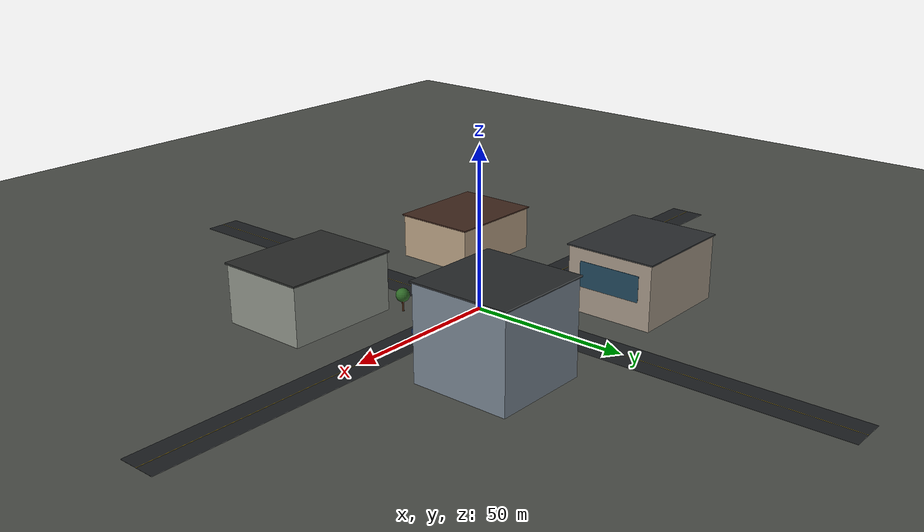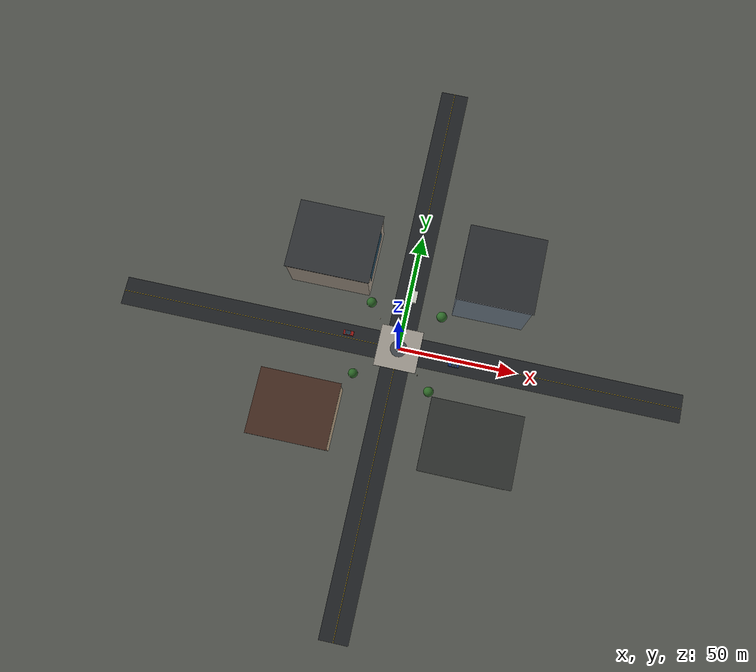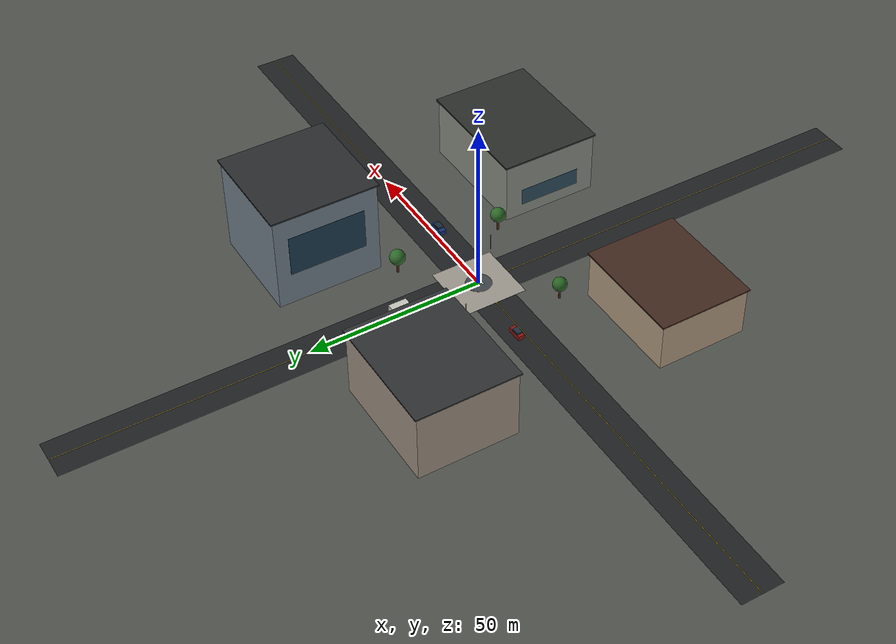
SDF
<?xml version="1.0" encoding="UTF-8"?>
<sdf version="1.9">
  <world name="urban_block">
    <physics type="ode">
      <max_step_size>0.004</max_step_size>
      <real_time_factor>1.0</real_time_factor>
      <real_time_update_rate>250</real_time_update_rate>
    </physics>
    <gravity>0 0 -9.8</gravity>
    <magnetic_field>6e-06 2.3e-05 -4.2e-05</magnetic_field>
    <atmosphere type="adiabatic"/>
    <scene>
      <grid>false</grid>
      <ambient>0.46 0.48 0.52 1</ambient>
      <background>0.54 0.69 0.86 1</background>
      <shadows>true</shadows>
    </scene>

    <light name="sunUTC" type="directional">
      <pose>0 0 500 0 0 0</pose>
      <cast_shadows>true</cast_shadows>
      <intensity>1.0</intensity>
      <direction>-0.4 0.35 -0.84</direction>
      <diffuse>0.95 0.92 0.86 1</diffuse>
      <specular>0.24 0.24 0.22 1</specular>
      <attenuation><range>2000</range><linear>0</linear><constant>1</constant><quadratic>0</quadratic></attenuation>
    </light>

    <model name="ground_plane">
      <static>true</static>
      <link name="link">
        <collision name="collision"><geometry><plane><normal>0 0 1</normal><size>1 1</size></plane></geometry></collision>
        <visual name="ground"><geometry><plane><normal>0 0 1</normal><size>420 420</size></plane></geometry><material><ambient>0.24 0.25 0.23 1</ambient><diffuse>0.31 0.32 0.30 1</diffuse></material></visual>
      </link>
    </model>

    <model name="roads">
      <static>true</static>
      <link name="link">
        <visual name="east_west"><pose>0 0 0.012 0 0 0</pose><geometry><box><size>240 12 0.024</size></box></geometry><material><ambient>0.08 0.09 0.10 1</ambient><diffuse>0.12 0.13 0.14 1</diffuse></material></visual>
        <visual name="north_south"><pose>0 0 0.013 0 0 0</pose><geometry><box><size>12 240 0.025</size></box></geometry><material><ambient>0.08 0.09 0.10 1</ambient><diffuse>0.12 0.13 0.14 1</diffuse></material></visual>
        <visual name="ew_center"><pose>0 0 0.028 0 0 0</pose><geometry><box><size>240 0.14 0.01</size></box></geometry><material><diffuse>0.93 0.75 0.08 1</diffuse></material></visual>
        <visual name="ns_center"><pose>0 0 0.029 0 0 0</pose><geometry><box><size>0.14 240 0.01</size></box></geometry><material><diffuse>0.93 0.75 0.08 1</diffuse></material></visual>
      </link>
    </model>

    <model name="central_plaza">
      <static>true</static>
      <pose>0 0 0.04 0 0 0</pose>
      <link name="link">
        <visual name="plaza"><geometry><box><size>18 18 0.06</size></box></geometry><material><ambient>0.45 0.44 0.41 1</ambient><diffuse>0.61 0.59 0.55 1</diffuse></material></visual>
        <visual name="pad"><pose>0 0 0.04 0 0 0</pose><geometry><cylinder><radius>3.6</radius><length>0.02</length></cylinder></geometry><material><diffuse>0.25 0.27 0.29 1</diffuse></material></visual>
        <visual name="h1"><pose>0 -0.8 0.06 0 0 0</pose><geometry><box><size>2.4 0.34 0.01</size></box></geometry><material><diffuse>0.98 0.98 0.96 1</diffuse></material></visual>
        <visual name="h2"><pose>0 0.8 0.06 0 0 0</pose><geometry><box><size>2.4 0.34 0.01</size></box></geometry><material><diffuse>0.98 0.98 0.96 1</diffuse></material></visual>
        <visual name="h3"><pose>0 0 0.061 0 0 0</pose><geometry><box><size>0.38 1.95 0.01</size></box></geometry><material><diffuse>0.98 0.98 0.96 1</diffuse></material></visual>
      </link>
    </model>

    <model name="building_nw">
      <static>true</static><pose>-34 34 10 0 0 0</pose>
      <link name="link"><collision name="collision"><geometry><box><size>34 28 20</size></box></geometry></collision><visual name="body"><geometry><box><size>34 28 20</size></box></geometry><material><ambient>0.46 0.43 0.39 1</ambient><diffuse>0.62 0.57 0.51 1</diffuse></material></visual><visual name="roof"><pose>0 0 10.2 0 0 0</pose><geometry><box><size>35 29 0.4</size></box></geometry><material><diffuse>0.18 0.19 0.20 1</diffuse></material></visual><visual name="glass_band"><pose>17.02 0 2 0 1.5708 0</pose><geometry><box><size>8 20 0.08</size></box></geometry><material><ambient>0.08 0.16 0.22 1</ambient><diffuse>0.12 0.26 0.34 1</diffuse><specular>0.7 0.7 0.7 1</specular></material></visual></link>
    </model>

    <model name="building_ne">
      <static>true</static><pose>34 34 14 0 0 0</pose>
      <link name="link"><collision name="collision"><geometry><box><size>30 30 28</size></box></geometry></collision><visual name="body"><geometry><box><size>30 30 28</size></box></geometry><material><ambient>0.34 0.38 0.42 1</ambient><diffuse>0.45 0.50 0.55 1</diffuse></material></visual><visual name="roof"><pose>0 0 14.2 0 0 0</pose><geometry><box><size>31 31 0.45</size></box></geometry><material><diffuse>0.16 0.17 0.18 1</diffuse></material></visual><visual name="glass_band"><pose>-15.02 0 1.5 0 1.5708 0</pose><geometry><box><size>12 22 0.08</size></box></geometry><material><ambient>0.07 0.14 0.20 1</ambient><diffuse>0.11 0.23 0.31 1</diffuse><specular>0.75 0.75 0.75 1</specular></material></visual></link>
    </model>

    <model name="building_sw">
      <static>true</static><pose>-35 -35 7 0 0 0</pose>
      <link name="link"><collision name="collision"><geometry><box><size>32 26 14</size></box></geometry></collision><visual name="body"><geometry><box><size>32 26 14</size></box></geometry><material><ambient>0.55 0.48 0.40 1</ambient><diffuse>0.70 0.61 0.50 1</diffuse></material></visual><visual name="roof"><pose>0 0 7.2 0 0 0</pose><geometry><box><size>33 27 0.4</size></box></geometry><material><diffuse>0.26 0.16 0.12 1</diffuse></material></visual></link>
    </model>

    <model name="building_se">
      <static>true</static><pose>36 -34 9 0 0 0</pose>
      <link name="link"><collision name="collision"><geometry><box><size>36 28 18</size></box></geometry></collision><visual name="body"><geometry><box><size>36 28 18</size></box></geometry><material><ambient>0.40 0.42 0.39 1</ambient><diffuse>0.54 0.56 0.52 1</diffuse></material></visual><visual name="roof"><pose>0 0 9.25 0 0 0</pose><geometry><box><size>37 29 0.5</size></box></geometry><material><diffuse>0.17 0.18 0.17 1</diffuse></material></visual><visual name="shopfront"><pose>-18.02 0 -3 0 1.5708 0</pose><geometry><box><size>5 18 0.08</size></box></geometry><material><diffuse>0.18 0.30 0.36 1</diffuse><specular>0.6 0.6 0.6 1</specular></material></visual></link>
    </model>

    <model name="car_west"><static>true</static><pose>-22 2 0.65 0 0 0</pose><link name="link"><collision name="collision"><geometry><box><size>4.3 1.85 1.3</size></box></geometry></collision><visual name="body"><geometry><box><size>4.3 1.85 1.3</size></box></geometry><material><diffuse>0.55 0.08 0.07 1</diffuse><specular>0.25 0.25 0.25 1</specular></material></visual><visual name="cabin"><pose>-0.2 0 0.78 0 0 0</pose><geometry><box><size>2.3 1.65 0.7</size></box></geometry><material><diffuse>0.11 0.18 0.23 1</diffuse><specular>0.6 0.6 0.6 1</specular></material></visual></link></model>
    <model name="car_east"><static>true</static><pose>24 -2 0.65 0 0 3.14159</pose><link name="link"><collision name="collision"><geometry><box><size>4.5 1.9 1.3</size></box></geometry></collision><visual name="body"><geometry><box><size>4.5 1.9 1.3</size></box></geometry><material><diffuse>0.08 0.20 0.46 1</diffuse><specular>0.25 0.25 0.25 1</specular></material></visual><visual name="cabin"><pose>-0.2 0 0.78 0 0 0</pose><geometry><box><size>2.4 1.7 0.7</size></box></geometry><material><diffuse>0.10 0.17 0.22 1</diffuse><specular>0.6 0.6 0.6 1</specular></material></visual></link></model>
    <model name="van_north"><static>true</static><pose>2 23 0.95 0 0 1.5708</pose><link name="link"><collision name="collision"><geometry><box><size>5.2 2.1 1.9</size></box></geometry></collision><visual name="body"><geometry><box><size>5.2 2.1 1.9</size></box></geometry><material><diffuse>0.78 0.78 0.74 1</diffuse></material></visual></link></model>

    <model name="tree_1"><static>true</static><pose>-15 16 0 0 0 0</pose><link name="link"><collision name="trunk"><pose>0 0 2.1 0 0 0</pose><geometry><cylinder><radius>0.3</radius><length>4.2</length></cylinder></geometry></collision><visual name="trunk"><pose>0 0 2.1 0 0 0</pose><geometry><cylinder><radius>0.3</radius><length>4.2</length></cylinder></geometry><material><diffuse>0.28 0.16 0.08 1</diffuse></material></visual><visual name="crown"><pose>0 0 5.0 0 0 0</pose><geometry><sphere><radius>2.1</radius></sphere></geometry><material><diffuse>0.17 0.40 0.15 1</diffuse></material></visual></link></model>
    <model name="tree_2"><static>true</static><pose>15 16 0 0 0 0</pose><link name="link"><collision name="trunk"><pose>0 0 2.2 0 0 0</pose><geometry><cylinder><radius>0.32</radius><length>4.4</length></cylinder></geometry></collision><visual name="trunk"><pose>0 0 2.2 0 0 0</pose><geometry><cylinder><radius>0.32</radius><length>4.4</length></cylinder></geometry><material><diffuse>0.28 0.16 0.08 1</diffuse></material></visual><visual name="crown"><pose>0 0 5.2 0 0 0</pose><geometry><sphere><radius>2.2</radius></sphere></geometry><material><diffuse>0.18 0.42 0.16 1</diffuse></material></visual></link></model>
    <model name="tree_3"><static>true</static><pose>-16 -15 0 0 0 0</pose><link name="link"><collision name="trunk"><pose>0 0 2.0 0 0 0</pose><geometry><cylinder><radius>0.3</radius><length>4</length></cylinder></geometry></collision><visual name="trunk"><pose>0 0 2.0 0 0 0</pose><geometry><cylinder><radius>0.3</radius><length>4</length></cylinder></geometry><material><diffuse>0.29 0.16 0.08 1</diffuse></material></visual><visual name="crown"><pose>0 0 4.8 0 0 0</pose><geometry><sphere><radius>2.0</radius></sphere></geometry><material><diffuse>0.16 0.39 0.14 1</diffuse></material></visual></link></model>
    <model name="tree_4"><static>true</static><pose>16 -16 0 0 0 0</pose><link name="link"><collision name="trunk"><pose>0 0 2.2 0 0 0</pose><geometry><cylinder><radius>0.32</radius><length>4.4</length></cylinder></geometry></collision><visual name="trunk"><pose>0 0 2.2 0 0 0</pose><geometry><cylinder><radius>0.32</radius><length>4.4</length></cylinder></geometry><material><diffuse>0.29 0.16 0.08 1</diffuse></material></visual><visual name="crown"><pose>0 0 5.1 0 0 0</pose><geometry><sphere><radius>2.1</radius></sphere></geometry><material><diffuse>0.18 0.41 0.15 1</diffuse></material></visual></link></model>

    <model name="streetlights">
      <static>true</static>
      <link name="link">
        <collision name="p1"><pose>-10 10 2.5 0 0 0</pose><geometry><cylinder><radius>0.08</radius><length>5</length></cylinder></geometry></collision>
        <visual name="p1"><pose>-10 10 2.5 0 0 0</pose><geometry><cylinder><radius>0.08</radius><length>5</length></cylinder></geometry><material><diffuse>0.20 0.21 0.22 1</diffuse><specular>0.4 0.4 0.4 1</specular></material></visual>
        <visual name="l1"><pose>-10 10 5.0 0 0 0</pose><geometry><sphere><radius>0.18</radius></sphere></geometry><material><emissive>0.9 0.8 0.55 1</emissive><diffuse>0.9 0.8 0.55 1</diffuse></material></visual>
        <collision name="p2"><pose>10 -10 2.5 0 0 0</pose><geometry><cylinder><radius>0.08</radius><length>5</length></cylinder></geometry></collision>
        <visual name="p2"><pose>10 -10 2.5 0 0 0</pose><geometry><cylinder><radius>0.08</radius><length>5</length></cylinder></geometry><material><diffuse>0.20 0.21 0.22 1</diffuse><specular>0.4 0.4 0.4 1</specular></material></visual>
        <visual name="l2"><pose>10 -10 5.0 0 0 0</pose><geometry><sphere><radius>0.18</radius></sphere></geometry><material><emissive>0.9 0.8 0.55 1</emissive><diffuse>0.9 0.8 0.55 1</diffuse></material></visual>
      </link>
    </model>

    <spherical_coordinates>
      <surface_model>EARTH_WGS84</surface_model>
      <world_frame_orientation>ENU</world_frame_orientation>
      <latitude_deg>47.397971057728974</latitude_deg>
      <longitude_deg>8.546163739800146</longitude_deg>
      <elevation>0</elevation>
    </spherical_coordinates>
  </world>
</sdf>
